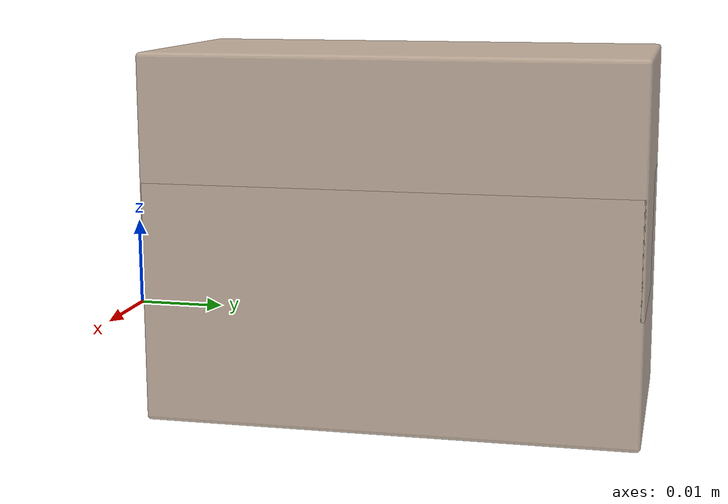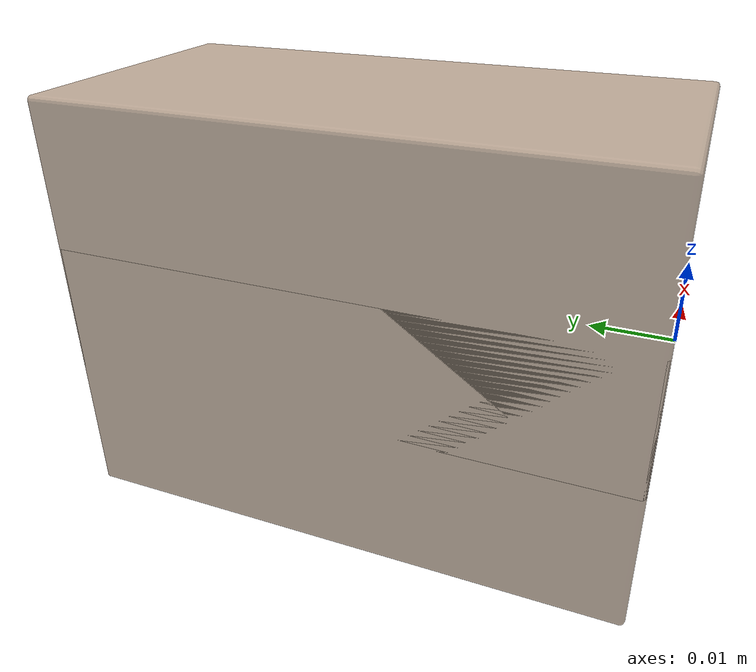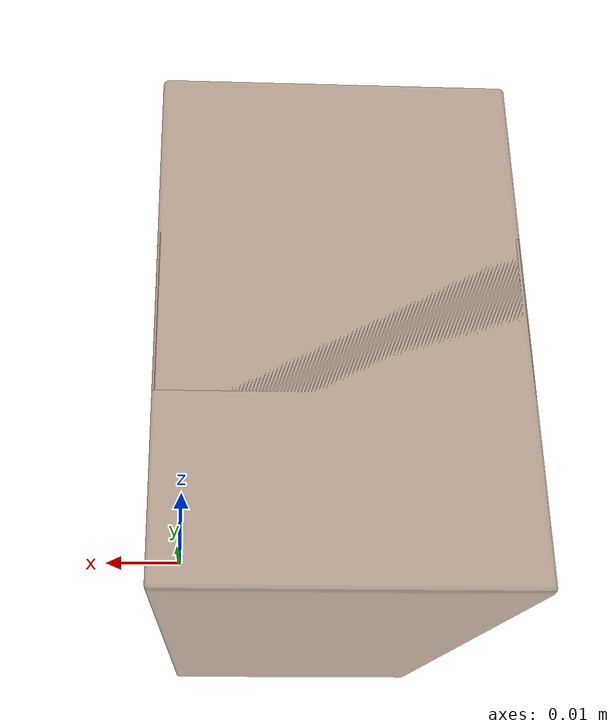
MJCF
<?xml version='1.0' encoding='utf8'?>
<mujoco model="cuboid_model">
    <compiler angle="degree" coordinate="local" />
    <option timestep="0.01" gravity="0 0 -9.81" />

    <asset>

        <mesh name="cuboid_vis" file="visual/cuboid.obj" scale="0.001 0.001 0.001" />
        <mesh name="cuboid_mesh" file="collision/cuboid.obj" scale="0.001 0.001 0.001" />
        <material name="mat" rgba="0.65 0.54 0.44 0.7" specular="0.0" shininess="0.0" />
    </asset>

    <worldbody>

        <body name="object" pos="0 0 0.015">

            <inertial pos="0 0 0" mass="0.1" diaginertia="1e-3 1e-3 1e-3" />

            <geom type="mesh" mesh="cuboid_vis" pos="0 0 0.015" contype="0" conaffinity="0" group="1" material="mat" rgba="0.65 0.54 0.44 0.7" />

            <geom name="cuboid_geom" type="mesh" mesh="cuboid_mesh" pos="0 0 0" contype="1" conaffinity="1" mass="0.1" group="0" friction="1.5 0.3 0.005" solimp="0.995 0.995 0.001" solref="0.0001 1" rgba="0.65 0.54 0.44 0.7" />

            <site rgba="0 0 0 0" size="0.005" pos="1.8e-09 0.0001579 -0.03245274" name="bottom_site" />
            <site rgba="0 0 0 0" size="0.005" pos="1.8e-09 0.0001579 0.03305049" name="top_site" />
            <site rgba="0 0 0 0" size="0.005" pos="0.0589176144 0.0575673768 0.000298875" name="horizontal_radius_site" />
        </body>
    </worldbody>
</mujoco>
